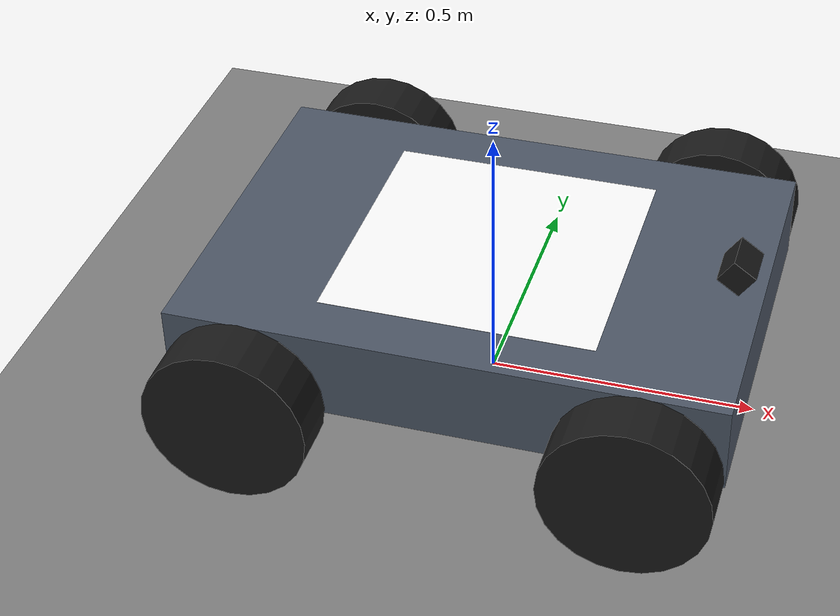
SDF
<?xml version="1.0" ?>
<sdf version="1.9">
  <!-- Phase 0 standalone test world for the ArduPilot skid_rover.          -->
  <!-- A flat ground plane + the skid_rover, nothing else, so the rover can -->
  <!-- be brought up and driven on its own (no drone, no moving platform)   -->
  <!-- before it is integrated into the combined mission world.             -->
  <!-- Run:                                                                 -->
  <!--   Terminal 1:  gz sim -v4 -r gazebo/worlds/rover_skid_test.sdf       -->
  <!--   Terminal 2:  sim_vehicle.py -v Rover (model JSON) -I1 (console)    -->
  <!--                  (map) add-param-file = gazebo/config/rover_skid.parm -->

  <!--   then in MAVProxy: mode MANUAL / arm throttle / rc 3 1600 to drive. -->
  <!--   The param file forces skid wiring (SERVO1=73/SERVO3=74); without   -->
  <!--   it the rover steers/curves instead of driving straight.            -->
  <!-- Needs GZ_SIM_RESOURCE_PATH to include gazebo/models and the          -->
  <!-- ardupilot_gazebo models (run via gazebo/run_sim.sh env, or export).  -->
  <world name="rover_skid_test">
    <physics name="1ms" type="ignore">
      <max_step_size>0.001</max_step_size>
      <real_time_factor>1.0</real_time_factor>
    </physics>

    <plugin filename="gz-sim-physics-system"
      name="gz::sim::systems::Physics"/>
    <plugin filename="gz-sim-sensors-system"
      name="gz::sim::systems::Sensors">
      <render_engine>ogre2</render_engine>
    </plugin>
    <plugin filename="gz-sim-user-commands-system"
      name="gz::sim::systems::UserCommands"/>
    <plugin filename="gz-sim-scene-broadcaster-system"
      name="gz::sim::systems::SceneBroadcaster"/>
    <plugin filename="gz-sim-imu-system"
      name="gz::sim::systems::Imu"/>
    <plugin filename="gz-sim-navsat-system"
      name="gz::sim::systems::NavSat"/>

    <spherical_coordinates>
      <latitude_deg>-35.363262</latitude_deg>
      <longitude_deg>149.165237</longitude_deg>
      <elevation>584</elevation>
      <heading_deg>0</heading_deg>
      <surface_model>EARTH_WGS84</surface_model>
    </spherical_coordinates>

    <light type="directional" name="sun">
      <cast_shadows>true</cast_shadows>
      <pose>0 0 10 0 0 0</pose>
      <diffuse>0.8 0.8 0.8 1</diffuse>
      <specular>0.8 0.8 0.8 1</specular>
      <attenuation>
        <range>1000</range>
        <constant>0.9</constant>
        <linear>0.01</linear>
        <quadratic>0.001</quadratic>
      </attenuation>
      <direction>-0.5 0.1 -0.9</direction>
    </light>

    <!-- Flat ground with collision so the wheels have something to roll on. -->
    <model name="ground_plane">
      <static>true</static>
      <link name="link">
        <collision name="collision">
          <geometry><plane><normal>0 0 1</normal><size>1000 1000</size></plane></geometry>
          <surface><friction><ode><mu>1.0</mu><mu2>1.0</mu2></ode></friction></surface>
        </collision>
        <visual name="visual">
          <geometry><plane><normal>0 0 1</normal><size>1000 1000</size></plane></geometry>
          <material>
            <ambient>0.3 0.3 0.3 1</ambient>
            <diffuse>0.5 0.5 0.5 1</diffuse>
          </material>
        </visual>
      </link>
    </model>

    <include>
      <uri>model://skid_rover</uri>
      <pose>0 0 0 0 0 0</pose>
    </include>
  </world>
</sdf>

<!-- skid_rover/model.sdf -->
<sdf version="1.9">
  <!-- skid_rover : a REAL ArduPilot Rover (skid-steer) ground vehicle.     -->
  <!-- Replaces the firmware-less aruco_platform (a kinematic box driven by -->
  <!-- VelocityControl/cmd_vel). Here an ArduRover SITL flies the vehicle   -->
  <!-- through the ArduPilotPlugin: SITL reads the IMU and writes servo PWM,-->
  <!-- the plugin turns those PWM into wheel-joint velocities. Steering is   -->
  <!-- SKID (differential): left wheels on one throttle channel, right on    -->
  <!-- the other, so a speed difference yaws the rover (no steering hinge).  -->
  <!-- Run alongside the drone with a SECOND SITL instance on -I1, which     -->
  <!-- offsets the FDM port to 9012 (drone stays on 9002). ALWAYS load the    -->
  <!-- skid param file - the rover-skid frame defaults do NOT stick across    -->
  <!-- runs (a previous default-Rover EEPROM leaves SERVO1=26/SERVO3=70):     -->
  <!--   sim_vehicle.py -v Rover (model JSON) -I1 (console) (map)             -->
  <!--     add-param-file = gazebo/config/rover_skid.parm                     -->
  <!-- That file sets the skid wiring this plugin expects:                    -->
  <!--   SERVO1_FUNCTION 73  (ThrottleLeft)   -> plugin channel 0            -->
  <!--   SERVO3_FUNCTION 74  (ThrottleRight)  -> plugin channel 2            -->
  <!-- Geometry (origin at chassis centre, ground at z=0):                   -->
  <!--   wheel radius 0.15 -> wheel axles at z=0.15 touch the ground         -->
  <!--   chassis box 1.0(x) x 0.7(y) x 0.16(z), centre z=0.20 -> top z=0.28  -->
  <!--   wheels at y=+/-0.42 (wide track) + low COM so it cannot flip when   -->
  <!--   driven hard; ArUco marker / drone landing surface = top, z=0.28     -->
  <model name="skid_rover">
    <!-- Chassis (flatbed): the driven body + landing surface on top.    -->
    <link name="chassis">
      <pose>0 0 0.20 0 0 0</pose>
      <inertial>
        <mass>6.0</mass>
        <inertia>
          <ixx>0.26</ixx><iyy>0.51</iyy><izz>0.75</izz>
          <ixy>0</ixy><ixz>0</ixz><iyz>0</iyz>
        </inertia>
      </inertial>
      <collision name="chassis_col">
        <geometry><box><size>1.0 0.7 0.16</size></box></geometry>
      </collision>
      <visual name="chassis_vis">
        <geometry><box><size>1.0 0.7 0.16</size></box></geometry>
        <material>
          <ambient>0.25 0.28 0.32 1</ambient>
          <diffuse>0.30 0.34 0.40 1</diffuse>
          <specular>0.1 0.1 0.1 1</specular>
        </material>
      </visual>

      <visual name="marker_vis">
        <pose>0 0 0.081 0 0 0</pose>
        <geometry>
          <plane><normal>0 0 1</normal><size>0.5 0.5</size></plane>
        </geometry>
        <material>
          <ambient>1 1 1 1</ambient>
          <diffuse>1 1 1 1</diffuse>
          <specular>0 0 0 1</specular>
          <pbr>
            <metal>
              <albedo_map>model://aruco_marker_0/materials/textures/aruco_0.png</albedo_map>
              <metalness>0.0</metalness>
              <roughness>1.0</roughness>
            </metal>
          </pbr>
        </material>
      </visual>

      <visual name="front_cam_vis">
        <pose>0.45 0 0.12 0 0.61 0</pose>
        <geometry><box><size>0.05 0.08 0.05</size></box></geometry>
        <material>
          <ambient>0.05 0.05 0.05 1</ambient>
          <diffuse>0.1 0.1 0.1 1</diffuse>
        </material>
      </visual>
      <sensor name="front_camera" type="camera">
        <gz_frame_id>skid_rover/front_camera</gz_frame_id>
        <pose>0.45 0 0.12 0 0.61 0</pose>
        <always_on>1</always_on>
        <update_rate>30</update_rate>
        <visualize>true</visualize>
        <topic>front_camera/image</topic>
        <camera>
          <horizontal_fov>1.60</horizontal_fov>
          <image><width>640</width><height>480</height><format>R8G8B8</format></image>
          <clip><near>0.05</near><far>1000</far></clip>
          <optical_frame_id>skid_rover/front_camera_optical</optical_frame_id>
        </camera>
      </sensor>
    </link>

    <!-- IMU link : ArduPilotPlugin reads this to fly the vehicle.       -->
    <!-- Rigidly fixed to the chassis at its centre.                     -->
    <link name="imu_link">
      <pose>0 0 0.20 0 0 0</pose>
      <inertial>
        <mass>0.01</mass>
        <inertia>
          <ixx>1e-5</ixx><iyy>1e-5</iyy><izz>1e-5</izz>
          <ixy>0</ixy><ixz>0</ixz><iyz>0</iyz>
        </inertia>
      </inertial>
      <sensor name="imu_sensor" type="imu">
        <always_on>1</always_on>
        <update_rate>1000</update_rate>
        <imu>
          <enable_orientation>0</enable_orientation>
        </imu>
      </sensor>
    </link>
    <joint name="imu_joint" type="fixed">
      <parent>chassis</parent>
      <child>imu_link</child>
    </joint>

    <!-- Four wheels. revolute about Y (chassis forward = +x).           -->
    <!-- Left pair driven by plugin channel 0 (ThrottleLeft),            -->
    <!-- right pair by channel 2 (ThrottleRight).                        -->
    <!-- Wheel centres at z=0.15 (= radius) so they touch the ground.    -->
    <!-- left front -->
    <link name="wheel_lf">
      <pose>0.35 0.42 0.15 -1.5708 0 0</pose>
      <inertial>
        <mass>2.0</mass>
        <inertia><ixx>0.013</ixx><iyy>0.013</iyy><izz>0.023</izz>
          <ixy>0</ixy><ixz>0</ixz><iyz>0</iyz></inertia>
      </inertial>
      <collision name="col">
        <geometry><cylinder><radius>0.15</radius><length>0.10</length></cylinder></geometry>
        <surface><friction><ode><mu>1.0</mu><mu2>1.0</mu2></ode></friction></surface>
      </collision>
      <visual name="vis">
        <geometry><cylinder><radius>0.15</radius><length>0.10</length></cylinder></geometry>
        <material><ambient>0.05 0.05 0.05 1</ambient><diffuse>0.1 0.1 0.1 1</diffuse></material>
      </visual>
    </link>
    <joint name="wheel_lf_joint" type="revolute">
      <parent>chassis</parent>
      <child>wheel_lf</child>
      <axis><xyz>0 0 1</xyz><limit><lower>-1e16</lower><upper>1e16</upper></limit>
        <dynamics><damping>0.5</damping><friction>0.0</friction></dynamics></axis>
    </joint>

    <!-- left rear -->
    <link name="wheel_lr">
      <pose>-0.35 0.42 0.15 -1.5708 0 0</pose>
      <inertial>
        <mass>2.0</mass>
        <inertia><ixx>0.013</ixx><iyy>0.013</iyy><izz>0.023</izz>
          <ixy>0</ixy><ixz>0</ixz><iyz>0</iyz></inertia>
      </inertial>
      <collision name="col">
        <geometry><cylinder><radius>0.15</radius><length>0.10</length></cylinder></geometry>
        <surface><friction><ode><mu>1.0</mu><mu2>1.0</mu2></ode></friction></surface>
      </collision>
      <visual name="vis">
        <geometry><cylinder><radius>0.15</radius><length>0.10</length></cylinder></geometry>
        <material><ambient>0.05 0.05 0.05 1</ambient><diffuse>0.1 0.1 0.1 1</diffuse></material>
      </visual>
    </link>
    <joint name="wheel_lr_joint" type="revolute">
      <parent>chassis</parent>
      <child>wheel_lr</child>
      <axis><xyz>0 0 1</xyz><limit><lower>-1e16</lower><upper>1e16</upper></limit>
        <dynamics><damping>0.5</damping><friction>0.0</friction></dynamics></axis>
    </joint>

    <!-- right front -->
    <link name="wheel_rf">
      <pose>0.35 -0.42 0.15 -1.5708 0 0</pose>
      <inertial>
        <mass>2.0</mass>
        <inertia><ixx>0.013</ixx><iyy>0.013</iyy><izz>0.023</izz>
          <ixy>0</ixy><ixz>0</ixz><iyz>0</iyz></inertia>
      </inertial>
      <collision name="col">
        <geometry><cylinder><radius>0.15</radius><length>0.10</length></cylinder></geometry>
        <surface><friction><ode><mu>1.0</mu><mu2>1.0</mu2></ode></friction></surface>
      </collision>
      <visual name="vis">
        <geometry><cylinder><radius>0.15</radius><length>0.10</length></cylinder></geometry>
        <material><ambient>0.05 0.05 0.05 1</ambient><diffuse>0.1 0.1 0.1 1</diffuse></material>
      </visual>
    </link>
    <joint name="wheel_rf_joint" type="revolute">
      <parent>chassis</parent>
      <child>wheel_rf</child>
      <axis><xyz>0 0 1</xyz><limit><lower>-1e16</lower><upper>1e16</upper></limit>
        <dynamics><damping>0.5</damping><friction>0.0</friction></dynamics></axis>
    </joint>

    <!-- right rear -->
    <link name="wheel_rr">
      <pose>-0.35 -0.42 0.15 -1.5708 0 0</pose>
      <inertial>
        <mass>2.0</mass>
        <inertia><ixx>0.013</ixx><iyy>0.013</iyy><izz>0.023</izz>
          <ixy>0</ixy><ixz>0</ixz><iyz>0</iyz></inertia>
      </inertial>
      <collision name="col">
        <geometry><cylinder><radius>0.15</radius><length>0.10</length></cylinder></geometry>
        <surface><friction><ode><mu>1.0</mu><mu2>1.0</mu2></ode></friction></surface>
      </collision>
      <visual name="vis">
        <geometry><cylinder><radius>0.15</radius><length>0.10</length></cylinder></geometry>
        <material><ambient>0.05 0.05 0.05 1</ambient><diffuse>0.1 0.1 0.1 1</diffuse></material>
      </visual>
    </link>
    <joint name="wheel_rr_joint" type="revolute">
      <parent>chassis</parent>
      <child>wheel_rr</child>
      <axis><xyz>0 0 1</xyz><limit><lower>-1e16</lower><upper>1e16</upper></limit>
        <dynamics><damping>0.5</damping><friction>0.0</friction></dynamics></axis>
    </joint>

    <!-- Plugins                                                         -->
    <plugin filename="gz-sim-joint-state-publisher-system"
      name="gz::sim::systems::JointStatePublisher">
    </plugin>

    <plugin name="ArduPilotPlugin" filename="ArduPilotPlugin">
      <!-- Port settings. -I1 offsets the FDM port to 9012 (drone keeps 9002),
           so the two SITL instances never collide on one Gazebo server. -->
      <fdm_addr>127.0.0.1</fdm_addr>
      <fdm_port_in>9012</fdm_port_in>
      <connectionTimeoutMaxCount>5</connectionTimeoutMaxCount>
      <lock_step>1</lock_step>
      <no_time_sync>1</no_time_sync>
      <have_32_channels>0</have_32_channels>

      <!-- Frame conventions: gazebo XYZ (x fwd, z up) -> ArduPilot NED. -->
      <modelXYZToAirplaneXForwardZDown degrees="true">0 0 0 180 0 0</modelXYZToAirplaneXForwardZDown>
      <gazeboXYZToNED degrees="true">0 0 0 180 0 90</gazeboXYZToNED>

      <imuName>imu_link::imu_sensor</imuName>

      <!-- left front -->
      <control channel="0">
        <jointName>wheel_lf_joint</jointName>
        <useForce>1</useForce>
        <multiplier>20</multiplier>
        <offset>-10</offset>
        <servo_min>1100</servo_min>
        <servo_max>1900</servo_max>
        <type>VELOCITY</type>
        <p_gain>0.8</p_gain><i_gain>0</i_gain><d_gain>0</d_gain>
        <i_max>0</i_max><i_min>0</i_min>
        <cmd_max>8</cmd_max><cmd_min>-8</cmd_min>
      </control>
      <!-- left rear -->
      <control channel="0">
        <jointName>wheel_lr_joint</jointName>
        <useForce>1</useForce>
        <multiplier>20</multiplier>
        <offset>-10</offset>
        <servo_min>1100</servo_min>
        <servo_max>1900</servo_max>
        <type>VELOCITY</type>
        <p_gain>0.8</p_gain><i_gain>0</i_gain><d_gain>0</d_gain>
        <i_max>0</i_max><i_min>0</i_min>
        <cmd_max>8</cmd_max><cmd_min>-8</cmd_min>
      </control>
      <!-- right front -->
      <control channel="2">
        <jointName>wheel_rf_joint</jointName>
        <useForce>1</useForce>
        <multiplier>20</multiplier>
        <offset>-10</offset>
        <servo_min>1100</servo_min>
        <servo_max>1900</servo_max>
        <type>VELOCITY</type>
        <p_gain>0.8</p_gain><i_gain>0</i_gain><d_gain>0</d_gain>
        <i_max>0</i_max><i_min>0</i_min>
        <cmd_max>8</cmd_max><cmd_min>-8</cmd_min>
      </control>
      <!-- right rear -->
      <control channel="2">
        <jointName>wheel_rr_joint</jointName>
        <useForce>1</useForce>
        <multiplier>20</multiplier>
        <offset>-10</offset>
        <servo_min>1100</servo_min>
        <servo_max>1900</servo_max>
        <type>VELOCITY</type>
        <p_gain>0.8</p_gain><i_gain>0</i_gain><d_gain>0</d_gain>
        <i_max>0</i_max><i_min>0</i_min>
        <cmd_max>8</cmd_max><cmd_min>-8</cmd_min>
      </control>
    </plugin>
  </model>
</sdf>
